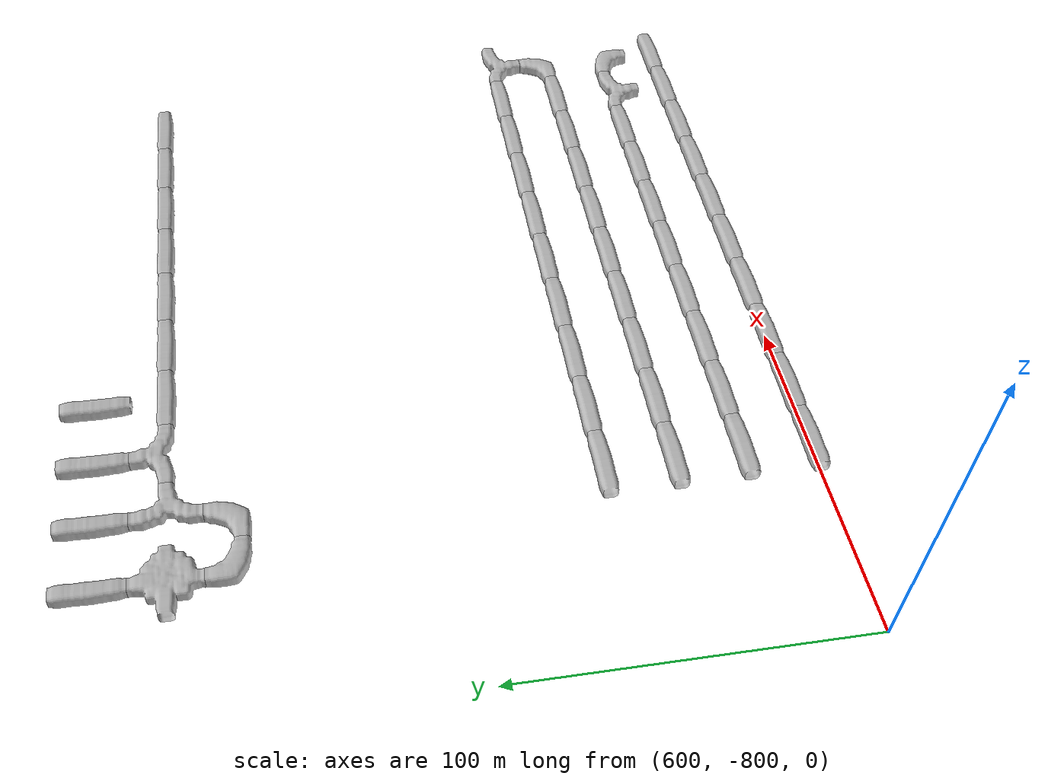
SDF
<sdf version="1.6">
 <world name="cave_32000_32">
  <include>
   <static>true</static>
   <name>cave_34_-30</name>
   <pose>680 -600 0 0 0 0.0</pose>
   <uri>model://cave_straight_20m</uri>
  </include>
  <include>
   <static>true</static>
   <name>cave_34_-31</name>
   <pose>680 -620 0 0 0 0.0</pose>
   <uri>model://cave_3way_20m</uri>
  </include>
  <include>
   <static>true</static>
   <name>cave_35_-31</name>
   <pose>700 -620 0 0 0 1.5707963267948966</pose>
   <uri>model://cave_straight_20m</uri>
  </include>
  <include>
   <static>true</static>
   <name>cave_36_-31</name>
   <pose>720 -620 0 0 0 1.5707963267948966</pose>
   <uri>model://cave_straight_20m</uri>
  </include>
  <include>
   <static>true</static>
   <name>cave_37_-31</name>
   <pose>740 -620 0 0 0 1.5707963267948966</pose>
   <uri>model://cave_straight_20m</uri>
  </include>
  <include>
   <static>true</static>
   <name>cave_38_-31</name>
   <pose>760 -620 0 0 0 1.5707963267948966</pose>
   <uri>model://cave_straight_20m</uri>
  </include>
  <include>
   <static>true</static>
   <name>cave_39_-31</name>
   <pose>780 -620 0 0 0 1.5707963267948966</pose>
   <uri>model://cave_straight_20m</uri>
  </include>
  <include>
   <static>true</static>
   <name>cave_40_-31</name>
   <pose>800 -620 0 0 0 1.5707963267948966</pose>
   <uri>model://cave_straight_20m</uri>
  </include>
  <include>
   <static>true</static>
   <name>cave_41_-31</name>
   <pose>820 -620 0 0 0 1.5707963267948966</pose>
   <uri>model://cave_straight_20m</uri>
  </include>
  <include>
   <static>true</static>
   <name>cave_35_-30</name>
   <pose>700 -600 0 0 0 0.0</pose>
   <uri>model://cave_straight_20m</uri>
  </include>
  <include>
   <static>true</static>
   <name>cave_33_-31</name>
   <pose>660 -620 0 0 0 -1.5707963267948966</pose>
   <uri>model://cave_3way_20m</uri>
  </include>
  <include>
   <static>true</static>
   <name>cave_33_-32</name>
   <pose>660 -640 0 0 0 1.5707963267948966</pose>
   <uri>model://cave_L_20m</uri>
  </include>
  <include>
   <static>true</static>
   <name>cave_32_-32</name>
   <pose>640 -640 0 0 0 0.0</pose>
   <uri>model://cave_L_20m</uri>
  </include>
  <include>
   <static>true</static>
   <name>cave_32_-31</name>
   <pose>640 -620 0 0 0 -1.5707963267948966</pose>
   <uri>model://cave_4way_20m</uri>
  </include>
  <include>
   <static>true</static>
   <name>cave_32_-30</name>
   <pose>640 -600 0 0 0 0.0</pose>
   <uri>model://cave_straight_20m</uri>
  </include>
  <include>
   <static>true</static>
   <name>cave_33_-30</name>
   <pose>660 -600 0 0 0 0.0</pose>
   <uri>model://cave_straight_20m</uri>
  </include>
  <include>
   <static>true</static>
   <name>cave_33_-40</name>
   <pose>660 -800 0 0 0 1.5707963267948966</pose>
   <uri>model://cave_straight_20m</uri>
  </include>
  <include>
   <static>true</static>
   <name>cave_34_-40</name>
   <pose>680 -800 0 0 0 1.5707963267948966</pose>
   <uri>model://cave_straight_20m</uri>
  </include>
  <include>
   <static>true</static>
   <name>cave_35_-40</name>
   <pose>700 -800 0 0 0 1.5707963267948966</pose>
   <uri>model://cave_straight_20m</uri>
  </include>
  <include>
   <static>true</static>
   <name>cave_36_-40</name>
   <pose>720 -800 0 0 0 1.5707963267948966</pose>
   <uri>model://cave_straight_20m</uri>
  </include>
  <include>
   <static>true</static>
   <name>cave_37_-40</name>
   <pose>740 -800 0 0 0 1.5707963267948966</pose>
   <uri>model://cave_straight_20m</uri>
  </include>
  <include>
   <static>true</static>
   <name>cave_38_-40</name>
   <pose>760 -800 0 0 0 1.5707963267948966</pose>
   <uri>model://cave_straight_20m</uri>
  </include>
  <include>
   <static>true</static>
   <name>cave_39_-40</name>
   <pose>780 -800 0 0 0 1.5707963267948966</pose>
   <uri>model://cave_straight_20m</uri>
  </include>
  <include>
   <static>true</static>
   <name>cave_40_-40</name>
   <pose>800 -800 0 0 0 1.5707963267948966</pose>
   <uri>model://cave_straight_20m</uri>
  </include>
  <include>
   <static>true</static>
   <name>cave_41_-40</name>
   <pose>820 -800 0 0 0 1.5707963267948966</pose>
   <uri>model://cave_straight_20m</uri>
  </include>
  <include>
   <static>true</static>
   <name>cave_42_-40</name>
   <pose>840 -800 0 0 0 1.5707963267948966</pose>
   <uri>model://cave_straight_20m</uri>
  </include>
  <include>
   <static>true</static>
   <name>cave_42_-37</name>
   <pose>840 -740 0 0 0 3.141592653589793</pose>
   <uri>model://cave_3way_20m</uri>
  </include>
  <include>
   <static>true</static>
   <name>cave_42_-38</name>
   <pose>840 -760 0 0 0 1.5707963267948966</pose>
   <uri>model://cave_L_20m</uri>
  </include>
  <include>
   <static>true</static>
   <name>cave_41_-38</name>
   <pose>820 -760 0 0 0 1.5707963267948966</pose>
   <uri>model://cave_straight_20m</uri>
  </include>
  <include>
   <static>true</static>
   <name>cave_40_-38</name>
   <pose>800 -760 0 0 0 1.5707963267948966</pose>
   <uri>model://cave_straight_20m</uri>
  </include>
  <include>
   <static>true</static>
   <name>cave_39_-38</name>
   <pose>780 -760 0 0 0 1.5707963267948966</pose>
   <uri>model://cave_straight_20m</uri>
  </include>
  <include>
   <static>true</static>
   <name>cave_38_-38</name>
   <pose>760 -760 0 0 0 1.5707963267948966</pose>
   <uri>model://cave_straight_20m</uri>
  </include>
  <include>
   <static>true</static>
   <name>cave_37_-38</name>
   <pose>740 -760 0 0 0 1.5707963267948966</pose>
   <uri>model://cave_straight_20m</uri>
  </include>
  <include>
   <static>true</static>
   <name>cave_36_-38</name>
   <pose>720 -760 0 0 0 1.5707963267948966</pose>
   <uri>model://cave_straight_20m</uri>
  </include>
  <include>
   <static>true</static>
   <name>cave_35_-38</name>
   <pose>700 -760 0 0 0 1.5707963267948966</pose>
   <uri>model://cave_straight_20m</uri>
  </include>
  <include>
   <static>true</static>
   <name>cave_34_-38</name>
   <pose>680 -760 0 0 0 1.5707963267948966</pose>
   <uri>model://cave_straight_20m</uri>
  </include>
  <include>
   <static>true</static>
   <name>cave_33_-38</name>
   <pose>660 -760 0 0 0 1.5707963267948966</pose>
   <uri>model://cave_straight_20m</uri>
  </include>
  <include>
   <static>true</static>
   <name>cave_41_-37</name>
   <pose>820 -740 0 0 0 1.5707963267948966</pose>
   <uri>model://cave_straight_20m</uri>
  </include>
  <include>
   <static>true</static>
   <name>cave_40_-37</name>
   <pose>800 -740 0 0 0 1.5707963267948966</pose>
   <uri>model://cave_straight_20m</uri>
  </include>
  <include>
   <static>true</static>
   <name>cave_39_-37</name>
   <pose>780 -740 0 0 0 1.5707963267948966</pose>
   <uri>model://cave_straight_20m</uri>
  </include>
  <include>
   <static>true</static>
   <name>cave_38_-37</name>
   <pose>760 -740 0 0 0 1.5707963267948966</pose>
   <uri>model://cave_straight_20m</uri>
  </include>
  <include>
   <static>true</static>
   <name>cave_37_-37</name>
   <pose>740 -740 0 0 0 1.5707963267948966</pose>
   <uri>model://cave_straight_20m</uri>
  </include>
  <include>
   <static>true</static>
   <name>cave_36_-37</name>
   <pose>720 -740 0 0 0 1.5707963267948966</pose>
   <uri>model://cave_straight_20m</uri>
  </include>
  <include>
   <static>true</static>
   <name>cave_35_-37</name>
   <pose>700 -740 0 0 0 1.5707963267948966</pose>
   <uri>model://cave_straight_20m</uri>
  </include>
  <include>
   <static>true</static>
   <name>cave_34_-37</name>
   <pose>680 -740 0 0 0 1.5707963267948966</pose>
   <uri>model://cave_straight_20m</uri>
  </include>
  <include>
   <static>true</static>
   <name>cave_33_-37</name>
   <pose>660 -740 0 0 0 1.5707963267948966</pose>
   <uri>model://cave_straight_20m</uri>
  </include>
  <include>
   <static>true</static>
   <name>cave_33_-39</name>
   <pose>660 -780 0 0 0 1.5707963267948966</pose>
   <uri>model://cave_straight_20m</uri>
  </include>
  <include>
   <static>true</static>
   <name>cave_34_-39</name>
   <pose>680 -780 0 0 0 1.5707963267948966</pose>
   <uri>model://cave_straight_20m</uri>
  </include>
  <include>
   <static>true</static>
   <name>cave_35_-39</name>
   <pose>700 -780 0 0 0 1.5707963267948966</pose>
   <uri>model://cave_straight_20m</uri>
  </include>
  <include>
   <static>true</static>
   <name>cave_36_-39</name>
   <pose>720 -780 0 0 0 1.5707963267948966</pose>
   <uri>model://cave_straight_20m</uri>
  </include>
  <include>
   <static>true</static>
   <name>cave_37_-39</name>
   <pose>740 -780 0 0 0 1.5707963267948966</pose>
   <uri>model://cave_straight_20m</uri>
  </include>
  <include>
   <static>true</static>
   <name>cave_38_-39</name>
   <pose>760 -780 0 0 0 1.5707963267948966</pose>
   <uri>model://cave_straight_20m</uri>
  </include>
  <include>
   <static>true</static>
   <name>cave_39_-39</name>
   <pose>780 -780 0 0 0 1.5707963267948966</pose>
   <uri>model://cave_straight_20m</uri>
  </include>
  <include>
   <static>true</static>
   <name>cave_40_-39</name>
   <pose>800 -780 0 0 0 1.5707963267948966</pose>
   <uri>model://cave_straight_20m</uri>
  </include>
  <include>
   <static>true</static>
   <name>cave_41_-39</name>
   <pose>820 -780 0 0 0 3.141592653589793</pose>
   <uri>model://cave_3way_20m</uri>
  </include>
  <include>
   <static>true</static>
   <name>cave_42_-39</name>
   <pose>840 -780 0 0 0 3.141592653589793</pose>
   <uri>model://cave_L_20m</uri>
  </include>
 </world>
</sdf>
